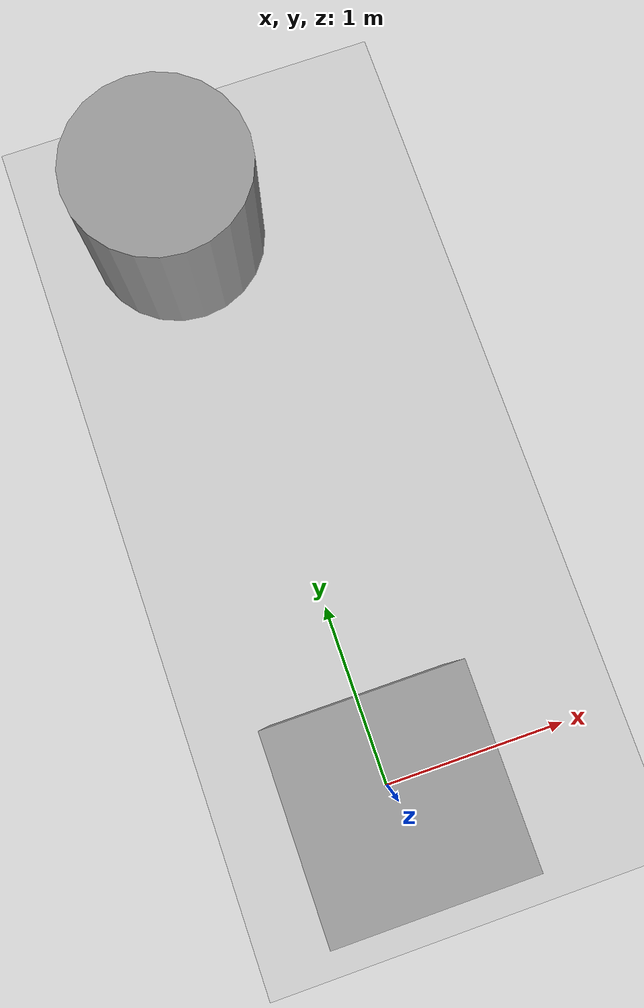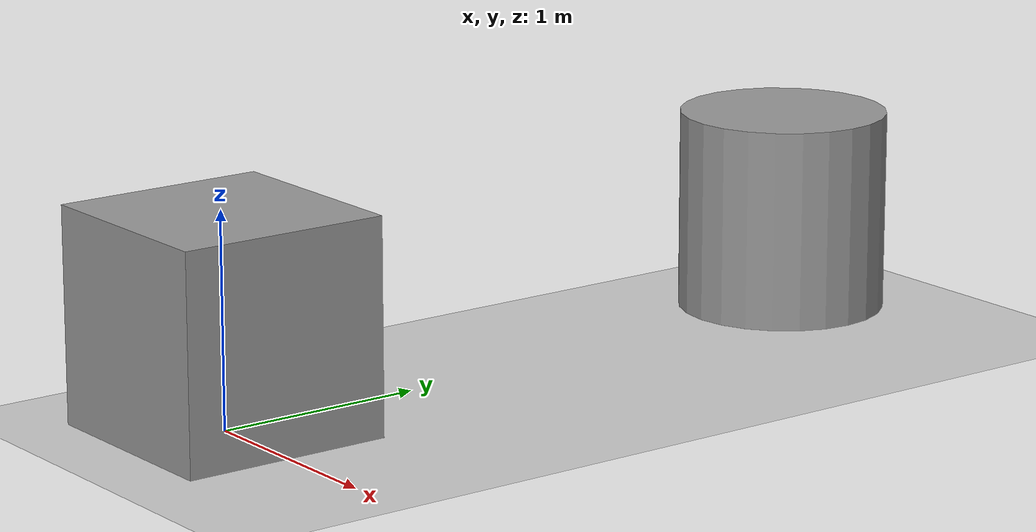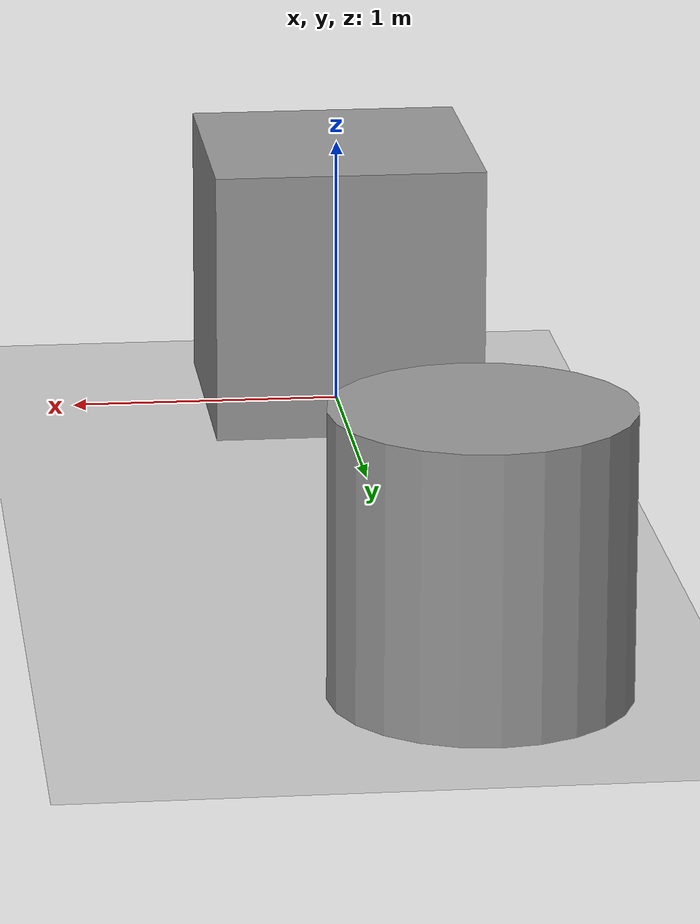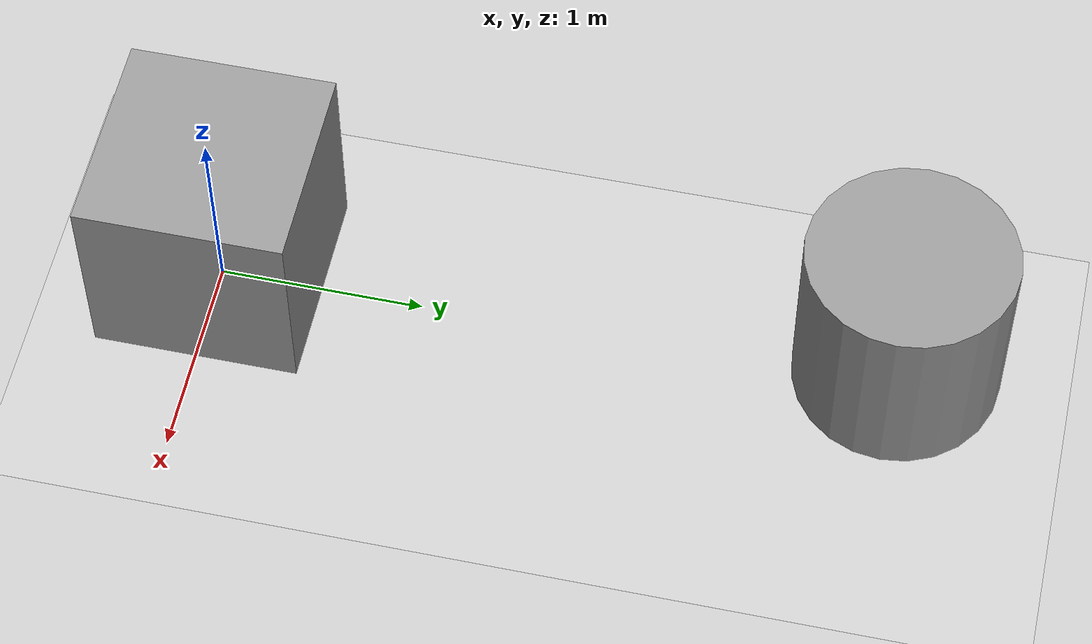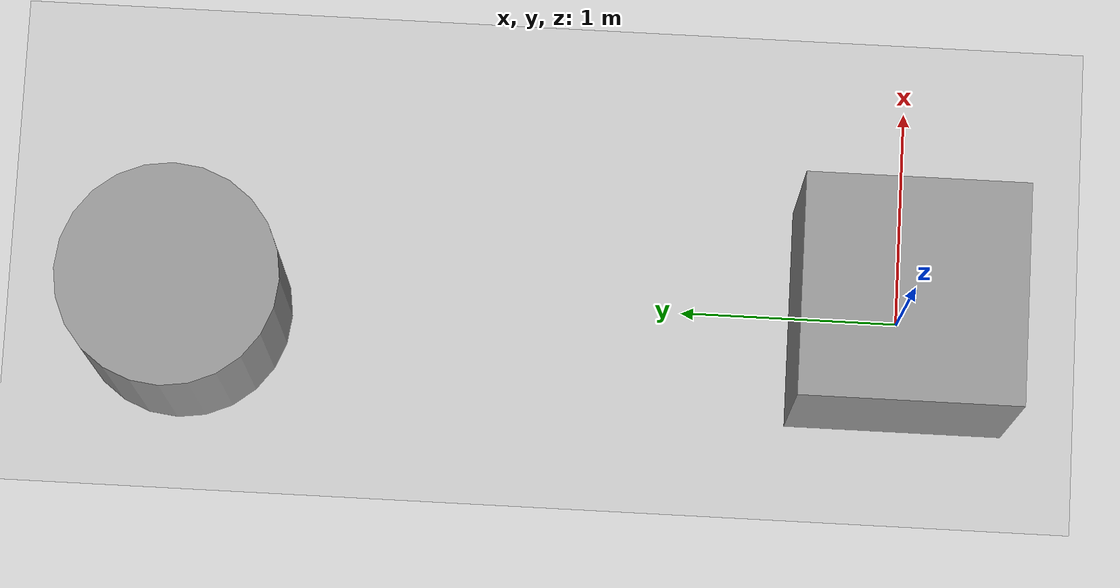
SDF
<sdf version="1.6">
 <world name="default">
  <light name="sun" type="directional">
   <pose>0 0 10 0 -0 0</pose>
   <diffuse>0.8 0.8 0.8 1</diffuse>
   <specular>0.2 0.2 0.2 1</specular>
   <attenuation>
    <range>1000</range>
    <constant>0.9</constant>
    <linear>0.01</linear>
    <quadratic>0.001</quadratic>
   </attenuation>
   <direction>-0.5 0.1 -0.9</direction>
  </light>
  <model name="ground_plane">
   <static>1</static>
   <link name="link">
    <collision name="collision">
     <geometry><plane><normal>0 0 1</normal><size>100 100</size></plane></geometry>
     <surface>
      <contact><collide_bitmask>65535</collide_bitmask></contact>
      <friction><ode><mu>100</mu><mu2>50</mu2></ode></friction>
     </surface>
    </collision>
    <visual name="visual">
     <cast_shadows>0</cast_shadows>
     <geometry><plane><normal>0 0 1</normal><size>100 100</size></plane></geometry>
     <material>
      <script><uri>file://media/materials/scripts/gazebo.material</uri><name>Gazebo/Grey</name></script>
     </material>
    </visual>
   </link>
  </model>
  <model name="ray_sensor_model">
   <pose>0 0 .5 0 0 0</pose>
   <static>0</static>
   <link name="link">
    <collision name="collision"><geometry><box><size>1 1 1</size></box></geometry></collision>
    <visual name="visual">
     <geometry><box><size>1 1 1</size></box></geometry>
     <material>
      <script><uri>file://media/materials/scripts/gazebo.material</uri><name>Gazebo/Grey</name></script>
     </material>
    </visual>
    <sensor type="ray" name="ray_sensor">
     <pose>0 .6 0 0 0 0</pose>
     <always_on>true</always_on>
     <update_rate>30</update_rate>
     <visualize>1</visualize>
     <ray>
      <scan>
       <horizontal>
        <samples>40</samples>
        <resolution>1</resolution>
        <min_angle>2.35</min_angle>
        <max_angle>0.785</max_angle>
       </horizontal>
      </scan>
      <range><min>0</min><max>100</max><resolution>1</resolution></range>
     </ray>
    </sensor>
   </link>
  </model>
  <model name="unit_cylinder">
   <pose>-0.105805 3.3006 0.483265 0 0 0</pose>
   <link name="link">
    <inertial>
     <mass>1</mass>
     <inertia><ixx>0.145833</ixx><ixy>0</ixy><ixz>0</ixz><iyy>0.145833</iyy><iyz>0</iyz><izz>0.125</izz></inertia>
    </inertial>
    <collision name="collision">
     <geometry><cylinder><radius>0.4999</radius><length>0.96653</length></cylinder></geometry>
    </collision>
    <visual name="visual">
     <geometry><cylinder><radius>0.4999</radius><length>0.96653</length></cylinder></geometry>
     <material>
      <script><name>Gazebo/Grey</name><uri>file://media/materials/scripts/gazebo.material</uri></script>
     </material>
    </visual>
   </link>
  </model>
  <gravity>0 0 -9.8</gravity>
  <magnetic_field>6e-06 2.3e-05 -4.2e-05</magnetic_field>
  <atmosphere type="adiabatic"/>
  <physics name="default_physics" default="0" type="dart">
   <max_step_size>0.001</max_step_size>
   <real_time_factor>1</real_time_factor>
   <real_time_update_rate>1000</real_time_update_rate>
  </physics>
  <scene><ambient>0.4 0.4 0.4 1</ambient><background>0.7 0.7 0.7 1</background><shadows>1</shadows></scene>
  <spherical_coordinates>
   <surface_model>EARTH_WGS84</surface_model>
   <latitude_deg>0</latitude_deg>
   <longitude_deg>0</longitude_deg>
   <elevation>0</elevation>
   <heading_deg>0</heading_deg>
  </spherical_coordinates>
 </world>
</sdf>
